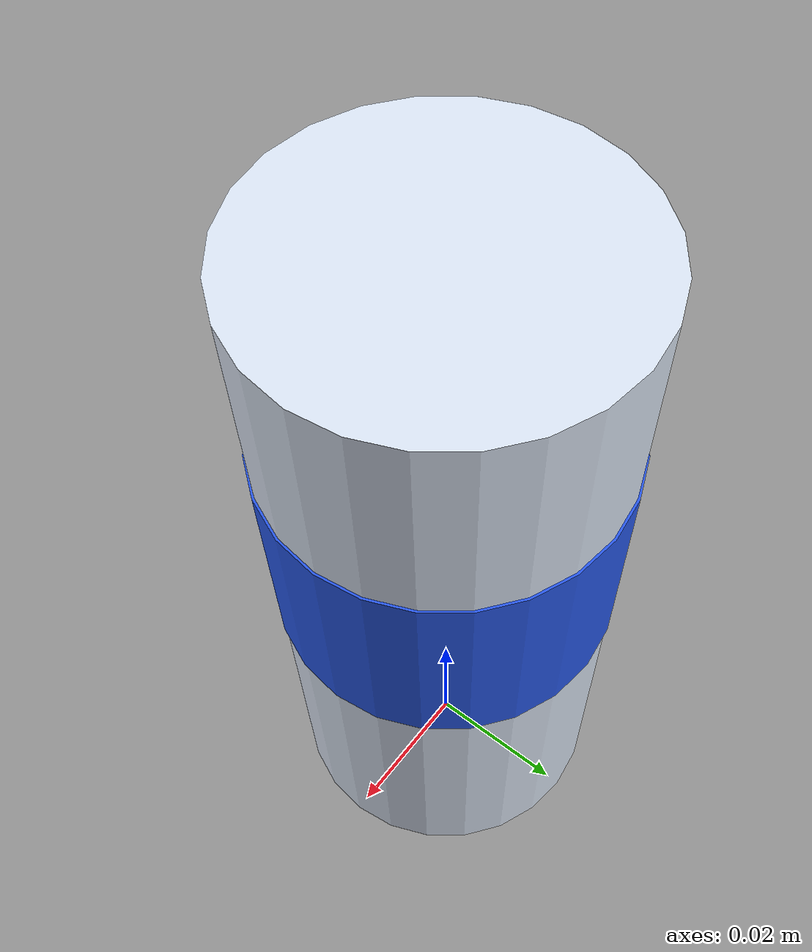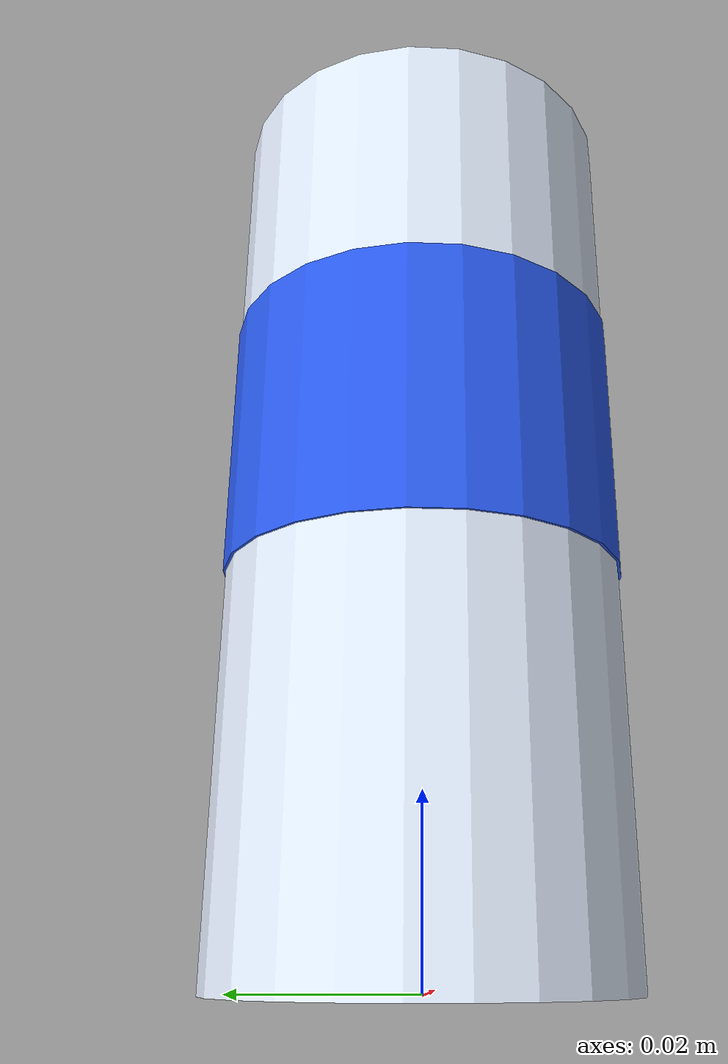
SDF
<?xml version="1.0" ?>
<sdf version="1.7">
  <model name="redbull_can">
    <static>false</static>
    <allow_auto_disable>false</allow_auto_disable>
    <link name="can_link">
      <pose>0 0 0.05 0 0 0</pose>
      <inertial>
        <mass>0.08</mass>
        <inertia>
          <ixx>0.00010</ixx>
          <iyy>0.00010</iyy>
          <izz>0.00003</izz>
          <ixy>0.0</ixy>
          <ixz>0.0</ixz>
          <iyz>0.0</iyz>
        </inertia>
      </inertial>
      <collision name="can_collision">
        <geometry>
          <cylinder>
            <radius>0.022</radius>
            <length>0.10</length>
          </cylinder>
        </geometry>
        <surface>
          <friction>
            <ode>
              <mu>10.0</mu>
              <mu2>10.0</mu2>
            </ode>
          </friction>
          <bounce>
            <restitution_coefficient>0.0</restitution_coefficient>
            <threshold>100000</threshold>
          </bounce>
          <contact>
            <ode>
              <kp>1000000.0</kp>
              <kd>10.0</kd>
              <min_depth>0.001</min_depth>
              <max_vel>0.0</max_vel>
            </ode>
          </contact>
        </surface>
      </collision>
      <visual name="can_visual">
        <geometry>
          <cylinder>
            <radius>0.022</radius>
            <length>0.10</length>
          </cylinder>
        </geometry>
        <material>
          <ambient>0.74 0.78 0.84 1.0</ambient>
          <diffuse>0.86 0.90 0.96 1.0</diffuse>
        </material>
      </visual>
      <visual name="band_visual">
        <geometry>
          <cylinder>
            <radius>0.0223</radius>
            <length>0.030</length>
          </cylinder>
        </geometry>
        <pose>0 0 0.008 0 0 0</pose>
        <material>
          <ambient>0.11 0.27 0.78 1.0</ambient>
          <diffuse>0.16 0.35 0.92 1.0</diffuse>
        </material>
      </visual>
    </link>
  </model>
</sdf>
